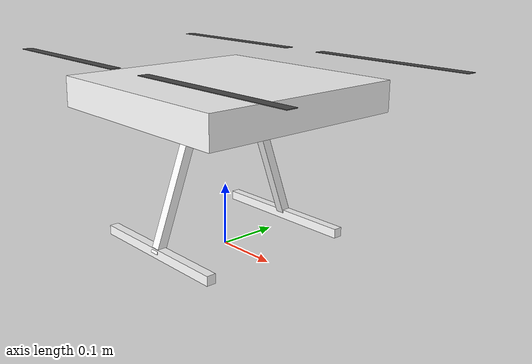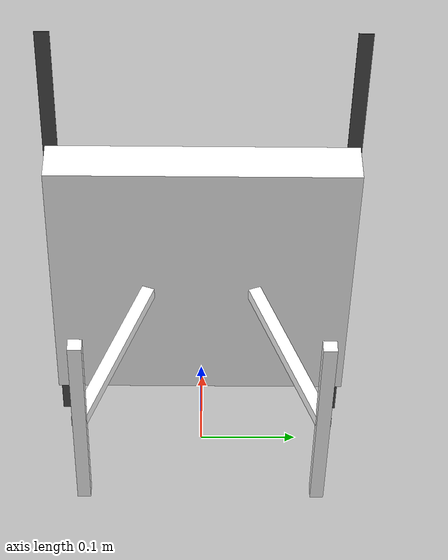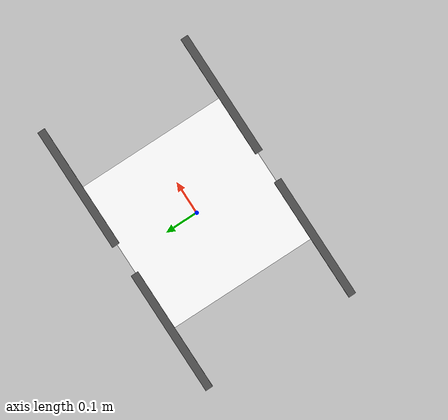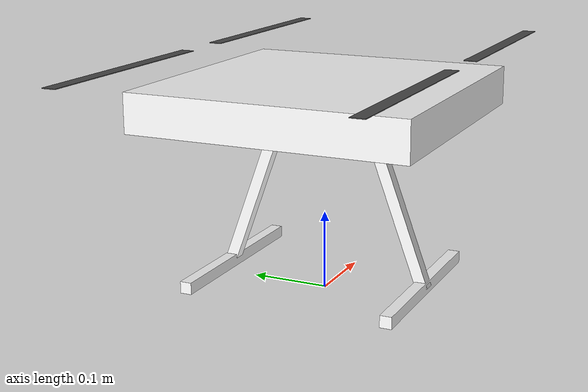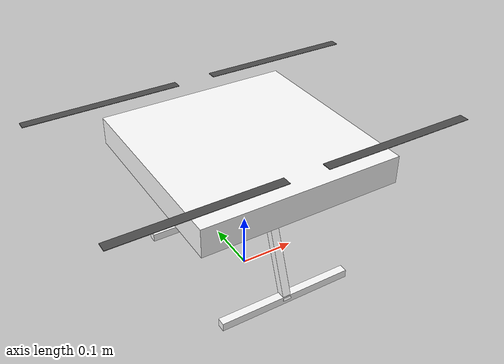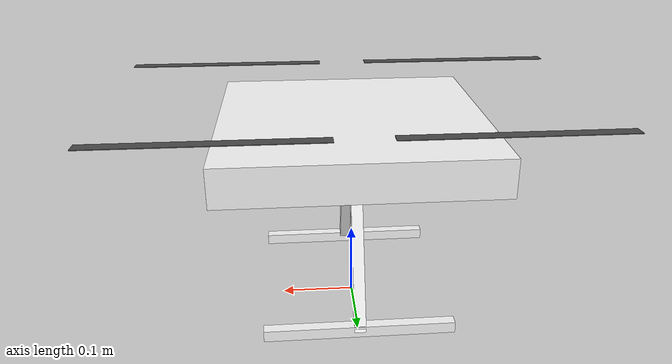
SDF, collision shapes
<?xml version="1.0" encoding="UTF-8"?>
<sdf version='1.9'>
  <model name='x500_depth'>
    <include merge='true'>
      <uri>x500</uri>
    </include>
    <include merge='true'>
      <uri>model://OakD-Lite</uri>
      <pose>0 0 0 0 0 0</pose>
    </include>
    <joint name="CameraJoint" type="fixed">
      <parent>base_link</parent>
      <child>camera_mount</child>
      <pose relative_to="base_link">0 0 0 0 0 0</pose>
    </joint>
  </model>
</sdf>

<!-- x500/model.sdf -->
<sdf version='1.9'>
  <model name='x500'>
    <include merge='true'>
      <uri>model://x500_base</uri>
    </include>
    <plugin filename="gz-sim-multicopter-motor-model-system" name="gz::sim::systems::MulticopterMotorModel">
      <jointName>rotor_0_joint</jointName>
      <linkName>rotor_0</linkName>
      <turningDirection>ccw</turningDirection>
      <timeConstantUp>0.0125</timeConstantUp>
      <timeConstantDown>0.025</timeConstantDown>
      <maxRotVelocity>1000.0</maxRotVelocity>
      <motorConstant>8.54858e-06</motorConstant>
      <momentConstant>0.016</momentConstant>
      <commandSubTopic>command/motor_speed</commandSubTopic>
      <motorNumber>0</motorNumber>
      <rotorDragCoefficient>8.06428e-05</rotorDragCoefficient>
      <rollingMomentCoefficient>1e-06</rollingMomentCoefficient>
      <rotorVelocitySlowdownSim>10</rotorVelocitySlowdownSim>
      <motorType>velocity</motorType>
      <motorSpeedPubTopic>out/motor_speed/0</motorSpeedPubTopic>
    </plugin>
    <plugin filename="gz-sim-multicopter-motor-model-system" name="gz::sim::systems::MulticopterMotorModel">
      <jointName>rotor_1_joint</jointName>
      <linkName>rotor_1</linkName>
      <turningDirection>ccw</turningDirection>
      <timeConstantUp>0.0125</timeConstantUp>
      <timeConstantDown>0.025</timeConstantDown>
      <maxRotVelocity>1000.0</maxRotVelocity>
      <motorConstant>8.54858e-06</motorConstant>
      <momentConstant>0.016</momentConstant>
      <commandSubTopic>command/motor_speed</commandSubTopic>
      <motorNumber>1</motorNumber>
      <rotorDragCoefficient>8.06428e-05</rotorDragCoefficient>
      <rollingMomentCoefficient>1e-06</rollingMomentCoefficient>
      <rotorVelocitySlowdownSim>10</rotorVelocitySlowdownSim>
      <motorType>velocity</motorType>
      <motorSpeedPubTopic>out/motor_speed/1</motorSpeedPubTopic>
    </plugin>
    <plugin filename="gz-sim-multicopter-motor-model-system" name="gz::sim::systems::MulticopterMotorModel">
      <jointName>rotor_2_joint</jointName>
      <linkName>rotor_2</linkName>
      <turningDirection>cw</turningDirection>
      <timeConstantUp>0.0125</timeConstantUp>
      <timeConstantDown>0.025</timeConstantDown>
      <maxRotVelocity>1000.0</maxRotVelocity>
      <motorConstant>8.54858e-06</motorConstant>
      <momentConstant>0.016</momentConstant>
      <commandSubTopic>command/motor_speed</commandSubTopic>
      <motorNumber>2</motorNumber>
      <rotorDragCoefficient>8.06428e-05</rotorDragCoefficient>
      <rollingMomentCoefficient>1e-06</rollingMomentCoefficient>
      <rotorVelocitySlowdownSim>10</rotorVelocitySlowdownSim>
      <motorType>velocity</motorType>
      <motorSpeedPubTopic>out/motor_speed/2</motorSpeedPubTopic>
    </plugin>
    <plugin filename="gz-sim-multicopter-motor-model-system" name="gz::sim::systems::MulticopterMotorModel">
      <jointName>rotor_3_joint</jointName>
      <linkName>rotor_3</linkName>
      <turningDirection>cw</turningDirection>
      <timeConstantUp>0.0125</timeConstantUp>
      <timeConstantDown>0.025</timeConstantDown>
      <maxRotVelocity>1000.0</maxRotVelocity>
      <motorConstant>8.54858e-06</motorConstant>
      <momentConstant>0.016</momentConstant>
      <commandSubTopic>command/motor_speed</commandSubTopic>
      <motorNumber>3</motorNumber>
      <rotorDragCoefficient>8.06428e-05</rotorDragCoefficient>
      <rollingMomentCoefficient>1e-06</rollingMomentCoefficient>
      <rotorVelocitySlowdownSim>10</rotorVelocitySlowdownSim>
      <motorType>velocity</motorType>
      <motorSpeedPubTopic>out/motor_speed/3</motorSpeedPubTopic>
    </plugin>
  </model>
</sdf>

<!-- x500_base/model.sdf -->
<sdf version='1.9'>
  <model name='x500_base'>
    <pose>0 0 .24 0 0 0</pose>
    <self_collide>false</self_collide>
    <static>false</static>
    <link name="base_link">
      <inertial>
        <mass>2.0</mass>
        <inertia>
          <ixx>0.02166666666666667</ixx>
          <ixy>0</ixy>
          <ixz>0</ixz>
          <iyy>0.02166666666666667</iyy>
          <iyz>0</iyz>
          <izz>0.04000000000000001</izz>
        </inertia>
      </inertial>
      <gravity>true</gravity>
      <velocity_decay/>
      <visual name="base_link_visual">
        <pose>0 0 .025 0 0 3.141592654</pose>
        <geometry>
          <mesh>
            <scale>1 1 1</scale>
            <uri>model://x500_base/meshes/NXP-HGD-CF.dae</uri>
          </mesh>
        </geometry>
      </visual>
      <visual name="5010_motor_base_0">
        <pose>0.174 0.174 .032 0 0 -.45</pose>
        <geometry>
          <mesh>
            <scale>1 1 1</scale>
            <uri>model://x500_base/meshes/5010Base.dae</uri>
          </mesh>
        </geometry>
      </visual>
      <visual name="5010_motor_base_1">
        <pose>-0.174 0.174 .032 0 0 -.45</pose>
        <geometry>
          <mesh>
            <scale>1 1 1</scale>
            <uri>model://x500_base/meshes/5010Base.dae</uri>
          </mesh>
        </geometry>
      </visual>
      <visual name="5010_motor_base_2">
        <pose>0.174 -0.174 .032 0 0 -.45</pose>
        <geometry>
          <mesh>
            <scale>1 1 1</scale>
            <uri>model://x500_base/meshes/5010Base.dae</uri>
          </mesh>
        </geometry>
      </visual>
      <visual name="5010_motor_base_3">
        <pose>-0.174 -0.174 .032 0 0 -.45</pose>
        <geometry>
          <mesh>
            <scale>1 1 1</scale>
            <uri>model://x500_base/meshes/5010Base.dae</uri>
          </mesh>
        </geometry>
      </visual>
      <visual name="NXP_FMUK66_FRONT">
        <pose>0.047 .001 .043 1 0 1.57</pose>
        <cast_shadows>false</cast_shadows>
        <geometry>
          <plane>
            <normal>0 0 1</normal>
            <size>.013 .007</size>
          </plane>
        </geometry>
        <material>
          <diffuse>1.0 1.0 1.0</diffuse>
          <specular>1.0 1.0 1.0</specular>
          <pbr>
            <metal>
              <albedo_map>model://x500_base/materials/textures/nxp.png</albedo_map>
            </metal>
          </pbr>
        </material>
      </visual>
      <visual name="NXP_FMUK66_TOP">
        <pose>-0.023 0 .0515 0 0 -1.57</pose>
        <cast_shadows>false</cast_shadows>
        <geometry>
          <plane>
            <normal>0 0 1</normal>
            <size>.013 .007</size>
          </plane>
        </geometry>
        <material>
          <diffuse>1.0 1.0 1.0</diffuse>
          <specular>1.0 1.0 1.0</specular>
          <pbr>
            <metal>
              <albedo_map>model://x500_base/materials/textures/nxp.png</albedo_map>
            </metal>
          </pbr>
        </material>
      </visual>
      <visual name="RDDRONE_FMUK66_TOP">
        <pose>-.03 0 .0515 0 0 -1.57</pose>
        <cast_shadows>false</cast_shadows>
        <geometry>
          <plane>
            <normal>0 0 1</normal>
            <size>.032 .0034</size>
          </plane>
        </geometry>
        <material>
          <diffuse>1.0 1.0 1.0</diffuse>
          <specular>1.0 1.0 1.0</specular>
          <pbr>
            <metal>
              <albedo_map>model://x500_base/materials/textures/rd.png</albedo_map>
            </metal>
          </pbr>
        </material>
      </visual>
      <collision name="base_link_collision_0">
        <pose>0 0 .007 0 0 0</pose>
        <geometry>
          <box>
            <size>0.35355339059327373 0.35355339059327373 0.05</size>
          </box>
        </geometry>
        <surface>
          <contact>
            <ode>
              <min_depth>0.001</min_depth>
              <max_vel>0</max_vel>
            </ode>
          </contact>
          <friction>
            <ode/>
          </friction>
        </surface>
      </collision>
      <collision name="base_link_collision_1">
        <pose>0 -0.098 -.123 -0.35 0 0</pose>
        <geometry>
          <box>
            <size>0.015 0.015 0.21</size>
          </box>
        </geometry>
        <surface>
          <contact>
            <ode>
              <min_depth>0.001</min_depth>
              <max_vel>0</max_vel>
            </ode>
          </contact>
          <friction>
            <ode/>
          </friction>
        </surface>
      </collision>
      <collision name="base_link_collision_2">
        <pose>0 0.098 -.123 0.35 0 0</pose>
        <geometry>
          <box>
            <size>0.015 0.015 0.21</size>
          </box>
        </geometry>
        <surface>
          <contact>
            <ode>
              <min_depth>0.001</min_depth>
              <max_vel>0</max_vel>
            </ode>
          </contact>
          <friction>
            <ode/>
          </friction>
        </surface>
      </collision>
      <collision name="base_link_collision_3">
        <pose>0 -0.132 -.2195 0 0 0</pose>
        <geometry>
          <box>
            <size>0.25 0.015 0.015</size>
          </box>
        </geometry>
        <surface>
          <contact>
            <ode>
              <min_depth>0.001</min_depth>
              <max_vel>0</max_vel>
            </ode>
          </contact>
          <friction>
            <ode/>
          </friction>
        </surface>
      </collision>
      <collision name="base_link_collision_4">
        <pose>0 0.132 -.2195 0 0 0</pose>
        <geometry>
          <box>
            <size>0.25 0.015 0.015</size>
          </box>
        </geometry>
        <surface>
          <contact>
            <ode>
              <min_depth>0.001</min_depth>
              <max_vel>0</max_vel>
            </ode>
          </contact>
          <friction>
            <ode/>
          </friction>
        </surface>
      </collision>
      <sensor name="air_pressure_sensor" type="air_pressure">
        <always_on>1</always_on>
        <update_rate>50</update_rate>
        <air_pressure>
          <!-- Noise modeled after BMP390 -->
          <pressure>
            <noise type="gaussian">
              <mean>0</mean>
              <stddev>3</stddev>
            </noise>
          </pressure>
        </air_pressure>
      </sensor>
      <sensor name="magnetometer_sensor" type="magnetometer">
        <always_on>1</always_on>
        <update_rate>100</update_rate>
        <magnetometer>
          <!-- TODO: update to fix units and coordinate system when we move past Harmonic -->
          <!-- See https://github.com/gazebosim/gz-sim/pull/2460 -->
          <!-- 3mgauss RMS: NOTE: noise is in tesla but sensor reports data in gauss -->
          <!-- Noise modeled after IIS2MDC -->
          <x>
            <noise type="gaussian">
              <stddev>0.0001</stddev>
            </noise>
          </x>
          <y>
            <noise type="gaussian">
              <stddev>0.0001</stddev>
            </noise>
          </y>
          <z>
            <noise type="gaussian">
              <stddev>0.0001</stddev>
            </noise>
          </z>
        </magnetometer>
      </sensor>
      <sensor name="imu_sensor" type="imu">
        <always_on>1</always_on>
        <update_rate>250</update_rate>
        <imu>
          <angular_velocity>
            <x>
              <noise type="gaussian">
                <mean>0.0</mean>
                <stddev>0.00008726646</stddev>
              </noise>
            </x>
            <y>
              <noise type="gaussian">
                <mean>0.0</mean>
                <stddev>0.00008726646</stddev>
              </noise>
            </y>
            <z>
              <noise type="gaussian">
                <mean>0.0</mean>
                <stddev>0.00008726646</stddev>
              </noise>
            </z>
          </angular_velocity>
          <linear_acceleration>
            <x>
              <noise type="gaussian">
                <mean>0.0</mean>
                <stddev>0.000637</stddev>
              </noise>
            </x>
            <y>
              <noise type="gaussian">
                <mean>0.0</mean>
                <stddev>0.000637</stddev>
              </noise>
            </y>
            <z>
              <noise type="gaussian">
                <mean>0.0</mean>
                <stddev>0.000686</stddev>
              </noise>
            </z>
          </linear_acceleration>
        </imu>
      </sensor>
      <sensor name="navsat_sensor" type="navsat">
        <always_on>1</always_on>
        <update_rate>30</update_rate>
      </sensor>
    </link>
    <link name="rotor_0">
      <gravity>true</gravity>
      <self_collide>false</self_collide>
      <velocity_decay/>
      <pose>0.174 -0.174 0.06 0 0 0</pose>
      <inertial>
          <mass>0.016076923076923075</mass>
          <inertia>
            <ixx>3.8464910483993325e-07</ixx>
            <iyy>2.6115851691700804e-05</iyy>
            <izz>2.649858234714004e-05</izz>
          </inertia>
        </inertial>
      <visual name="rotor_0_visual">
        <pose>-0.022 -0.14638461538461536 -0.016 0 0 0</pose>
        <geometry>
          <mesh>
            <scale>0.8461538461538461 0.8461538461538461 0.8461538461538461</scale>
            <uri>model://x500_base/meshes/1345_prop_ccw.stl</uri>
          </mesh>
        </geometry>
        <material>
          <script>
            <name>Gazebo/DarkGrey</name>
            <uri>file://media/materials/scripts/gazebo.material</uri>
          </script>
        </material>
      </visual>
      <visual name="rotor_0_visual_motor_bell">
        <pose>0 0 -.032 0 0 0</pose>
        <geometry>
          <mesh>
            <scale>1 1 1</scale>
            <uri>model://x500_base/meshes/5010Bell.dae</uri>
          </mesh>
        </geometry>
      </visual>
      <collision name="rotor_0_collision">
        <pose>0 0 0 0 0 0 </pose>
        <geometry>
          <box>
            <size>0.2792307692307692 0.016923076923076923 0.0008461538461538462</size>
          </box>
        </geometry>
        <surface>
          <contact>
            <ode>
              <min_depth>0.001</min_depth>
              <max_vel>0</max_vel>
            </ode>
          </contact>
          <friction>
            <ode/>
          </friction>
        </surface>
      </collision>
    </link>
    <joint name="rotor_0_joint" type="revolute">
      <parent>base_link</parent>
      <child>rotor_0</child>
      <axis>
        <xyz>0 0 1</xyz>
        <limit>
          <lower>-1e+16</lower>
          <upper>1e+16</upper>
        </limit>
        <dynamics>
          <spring_reference>0</spring_reference>
          <spring_stiffness>0</spring_stiffness>
        </dynamics>
      </axis>
    </joint>
    <link name="rotor_1">
      <gravity>true</gravity>
      <self_collide>false</self_collide>
      <velocity_decay/>
      <pose>-0.174 0.174 0.06 0 0 0</pose>
      <inertial>
          <mass>0.016076923076923075</mass>
          <inertia>
            <ixx>3.8464910483993325e-07</ixx>
            <iyy>2.6115851691700804e-05</iyy>
            <izz>2.649858234714004e-05</izz>
          </inertia>
        </inertial>
      <visual name="rotor_1_visual">
        <pose>-0.022 -0.14638461538461536 -0.016 0 0 0</pose>
        <geometry>
          <mesh>
            <scale>0.8461538461538461 0.8461538461538461 0.8461538461538461</scale>
            <uri>model://x500_base/meshes/1345_prop_ccw.stl</uri>
          </mesh>
        </geometry>
        <material>
          <script>
            <name>Gazebo/DarkGrey</name>
            <uri>file://media/materials/scripts/gazebo.material</uri>
          </script>
        </material>
      </visual>
      <visual name="rotor_1_visual_motor_top">
        <pose>0 0 -.032 0 0 0</pose>
        <geometry>
          <mesh>
            <scale>1 1 1</scale>
            <uri>model://x500_base/meshes/5010Bell.dae</uri>
          </mesh>
        </geometry>
      </visual>
      <collision name="rotor_1_collision">
        <pose>0 0 0 0 0 0 </pose>
        <geometry>
          <box>
            <size>0.2792307692307692 0.016923076923076923 0.0008461538461538462</size>
          </box>
        </geometry>
        <surface>
          <contact>
            <ode>
              <min_depth>0.001</min_depth>
              <max_vel>0</max_vel>
            </ode>
          </contact>
          <friction>
            <ode/>
          </friction>
        </surface>
      </collision>
    </link>
    <joint name="rotor_1_joint" type="revolute">
      <parent>base_link</parent>
      <child>rotor_1</child>
      <axis>
        <xyz>0 0 1</xyz>
        <limit>
          <lower>-1e+16</lower>
          <upper>1e+16</upper>
        </limit>
        <dynamics>
          <spring_reference>0</spring_reference>
          <spring_stiffness>0</spring_stiffness>
        </dynamics>
      </axis>
    </joint>
    <link name="rotor_2">
      <gravity>true</gravity>
      <self_collide>false</self_collide>
      <velocity_decay/>
      <pose>0.174 0.174 0.06 0 0 0</pose>
      <inertial>
          <mass>0.016076923076923075</mass>
          <inertia>
            <ixx>3.8464910483993325e-07</ixx>
            <iyy>2.6115851691700804e-05</iyy>
            <izz>2.649858234714004e-05</izz>
          </inertia>
        </inertial>
      <visual name="rotor_2_visual">
        <pose>-0.022 -0.14638461538461536 -0.016 0 0 0</pose>
        <geometry>
          <mesh>
            <scale>0.8461538461538461 0.8461538461538461 0.8461538461538461</scale>
            <uri>model://x500_base/meshes/1345_prop_cw.stl</uri>
          </mesh>
        </geometry>
        <material>
          <script>
            <name>Gazebo/DarkGrey</name>
            <uri>file://media/materials/scripts/gazebo.material</uri>
          </script>
        </material>
      </visual>
      <visual name="rotor_2_visual_motor_top">
        <pose>0 0 -.032 0 0 0</pose>
        <geometry>
          <mesh>
            <scale>1 1 1</scale>
            <uri>model://x500_base/meshes/5010Bell.dae</uri>
          </mesh>
        </geometry>
      </visual>
      <collision name="rotor_2_collision">
        <pose>0 0 0 0 0 0 </pose>
        <geometry>
          <box>
            <size>0.2792307692307692 0.016923076923076923 0.0008461538461538462</size>
          </box>
        </geometry>
        <surface>
          <contact>
            <ode>
              <min_depth>0.001</min_depth>
              <max_vel>0</max_vel>
            </ode>
          </contact>
          <friction>
            <ode/>
          </friction>
        </surface>
      </collision>
    </link>
    <joint name="rotor_2_joint" type="revolute">
      <parent>base_link</parent>
      <child>rotor_2</child>
      <axis>
        <xyz>0 0 1</xyz>
        <limit>
          <lower>-1e+16</lower>
          <upper>1e+16</upper>
        </limit>
        <dynamics>
          <spring_reference>0</spring_reference>
          <spring_stiffness>0</spring_stiffness>
        </dynamics>
      </axis>
    </joint>
    <link name="rotor_3">
      <gravity>true</gravity>
      <self_collide>false</self_collide>
      <velocity_decay/>
      <pose>-0.174 -0.174 0.06 0 0 0</pose>
      <inertial>
          <mass>0.016076923076923075</mass>
          <inertia>
            <ixx>3.8464910483993325e-07</ixx>
            <iyy>2.6115851691700804e-05</iyy>
            <izz>2.649858234714004e-05</izz>
          </inertia>
        </inertial>
      <visual name="rotor_3_visual">
        <pose>-0.022 -0.14638461538461536 -0.016 0 0 0</pose>
        <geometry>
          <mesh>
            <scale>0.8461538461538461 0.8461538461538461 0.8461538461538461</scale>
            <uri>model://x500_base/meshes/1345_prop_cw.stl</uri>
          </mesh>
        </geometry>
        <material>
          <script>
            <name>Gazebo/DarkGrey</name>
            <uri>file://media/materials/scripts/gazebo.material</uri>
          </script>
        </material>
      </visual>
      <visual name="rotor_3_visual_motor_top">
        <pose>0 0 -.032 0 0 0</pose>
        <geometry>
          <mesh>
            <scale>1 1 1</scale>
            <uri>model://x500_base/meshes/5010Bell.dae</uri>
          </mesh>
        </geometry>
      </visual>
      <collision name="rotor_3_collision">
        <pose>0 0 0 0 0 0 </pose>
        <geometry>
          <box>
            <size>0.2792307692307692 0.016923076923076923 0.0008461538461538462</size>
          </box>
        </geometry>
        <surface>
          <contact>
            <ode>
              <min_depth>0.001</min_depth>
              <max_vel>0</max_vel>
            </ode>
          </contact>
          <friction>
            <ode/>
          </friction>
        </surface>
      </collision>
    </link>
    <joint name="rotor_3_joint" type="revolute">
      <parent>base_link</parent>
      <child>rotor_3</child>
      <axis>
        <xyz>0 0 1</xyz>
        <limit>
          <lower>-1e+16</lower>
          <upper>1e+16</upper>
        </limit>
        <dynamics>
          <spring_reference>0</spring_reference>
          <spring_stiffness>0</spring_stiffness>
        </dynamics>
      </axis>
    </joint>
  </model>
</sdf>

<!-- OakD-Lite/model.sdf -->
<sdf version="1.9">
  <model name="OakD-Lite">
    <pose>0 0 0 0 0 0</pose>
    <self_collide>false</self_collide>
    <static>false</static>

    <!-- ROOT VIRTUALE: massa/inerzia quasi nulle -->
    <link name="camera_mount">
      <inertial>
        <mass>0.0001</mass>
        <inertia>
          <ixx>1e-6</ixx><ixy>0</ixy><ixz>0</ixz>
          <iyy>1e-6</iyy><iyz>0</iyz>
          <izz>1e-6</izz>
        </inertia>
      </inertial>
    </link>

    <!-- CAMERA FRONT: inerzia "reale" + mesh/collision se vuoi -->
    <link name="camera_link_front">
      <inertial>
        <pose>0.12358 0 0.256 0 0 0</pose>
        <mass>0.061</mass>
        <inertia>
          <ixx>0.0000460804</ixx>
          <ixy>0</ixy>
          <ixz>0</ixz>
          <iyy>0.0000055421</iyy>
          <iyz>0</iyz>
          <izz>0.0000436519</izz>
        </inertia>
      </inertial>

      <visual name="oakd_front_visual">
        <pose>0.12 0.03 0.242 0 0 0</pose>
        <geometry>
          <mesh>
            <scale>1 1 1</scale>
            <uri>model://OakD-Lite/meshes/OakDLite.dae</uri>
          </mesh>
        </geometry>
      </visual>

      <collision name="oakd_front_collision">
        <pose>0.12358 0 0.256 0 0 0</pose>
        <geometry>
          <box><size>0.0175 0.091 0.028</size></box>
        </geometry>
      </collision>

      <sensor name="IMX214_front" type="camera">
        <pose>0.12358 0 0.256 0 0 0</pose>
        <camera>
          <horizontal_fov>1.204</horizontal_fov>
          <image><width>1920</width><height>1080</height></image>
          <clip><near>0.1</near><far>100</far></clip>
        </camera>
        <always_on>1</always_on>
        <update_rate>30</update_rate>
        <visualize>true</visualize>
      </sensor>

      <sensor name="StereoOV7251_front" type="depth_camera">
        <pose>0.12358 0 0.256 0 0 0</pose>
        <camera>
          <horizontal_fov>1.274</horizontal_fov>
          <image>
            <width>640</width><height>480</height><format>R_FLOAT32</format>
          </image>
          <clip><near>0.2</near><far>19.1</far></clip>
        </camera>
        <always_on>1</always_on>
        <update_rate>30</update_rate>
        <visualize>true</visualize>
        <topic>depth_camera_front</topic>
      </sensor>
    </link>

    <!-- CAMERA RIGHT: inerzia "reale" + mesh/collision se vuoi -->
    <link name="camera_link_right">
      <inertial>
        <pose>0 -0.12358 0.256 0 0 -1.570796</pose>
        <mass>0.061</mass>
        <inertia>
          <ixx>0.0000460804</ixx>
          <ixy>0</ixy>
          <ixz>0</ixz>
          <iyy>0.0000055421</iyy>
          <iyz>0</iyz>
          <izz>0.0000436519</izz>
        </inertia>
      </inertial>

      <visual name="oakd_right_visual">
        <pose>0.03 -0.12 0.242 0 0 -1.570796</pose>
        <geometry>
          <mesh>
            <scale>1 1 1</scale>
            <uri>model://OakD-Lite/meshes/OakDLite.dae</uri>
          </mesh>
        </geometry>
      </visual>

      <collision name="oakd_right_collision">
        <pose>0 -0.12358 0.256 0 0 -1.570796</pose>
        <geometry>
          <box><size>0.0175 0.091 0.028</size></box>
        </geometry>
      </collision>

      <sensor name="IMX214_right" type="camera">
        <pose>0 -0.12358 0.256 0 0 -1.570796</pose>
        <camera>
          <horizontal_fov>1.204</horizontal_fov>
          <image><width>1920</width><height>1080</height></image>
          <clip><near>0.1</near><far>100</far></clip>
        </camera>
        <always_on>1</always_on>
        <update_rate>30</update_rate>
        <visualize>true</visualize>
      </sensor>

      <sensor name="StereoOV7251_right" type="depth_camera">
        <pose>0 -0.12358 0.256 0 0 -1.570796</pose>
        <camera>
          <horizontal_fov>1.274</horizontal_fov>
          <image>
            <width>640</width><height>480</height><format>R_FLOAT32</format>
          </image>
          <clip><near>0.2</near><far>19.1</far></clip>
        </camera>
        <always_on>1</always_on>
        <update_rate>30</update_rate>
        <visualize>true</visualize>
        <topic>depth_camera_right</topic>
      </sensor>
    </link>

    <!-- CAMERA LEFT: inerzia "reale" + mesh/collision se vuoi -->
    <link name="camera_link_left">
      <inertial>
        <pose>0 0.12358 0.256 0 0 1.570796</pose>
        <mass>0.061</mass>
        <inertia>
          <ixx>0.0000460804</ixx>
          <ixy>0</ixy>
          <ixz>0</ixz>
          <iyy>0.0000055421</iyy>
          <iyz>0</iyz>
          <izz>0.0000436519</izz>
        </inertia>
      </inertial>

      <visual name="oakd_left_visual">
        <pose>-0.03 0.12 0.242 0 0 1.570796</pose>
        <geometry>
          <mesh>
            <scale>1 1 1</scale>
            <uri>model://OakD-Lite/meshes/OakDLite.dae</uri>
          </mesh>
        </geometry>
      </visual>

      <collision name="oakd_left_collision">
        <pose>0 0.12358 0.256 0 0 1.570796</pose>
        <geometry>
          <box><size>0.0175 0.091 0.028</size></box>
        </geometry>
      </collision>

      <sensor name="IMX214_left" type="camera">
        <pose>0 0.12358 0.256 0 0 1.570796</pose>
        <camera>
          <horizontal_fov>1.204</horizontal_fov>
          <image><width>1920</width><height>1080</height></image>
          <clip><near>0.1</near><far>100</far></clip>
        </camera>
        <always_on>1</always_on>
        <update_rate>30</update_rate>
        <visualize>true</visualize>
      </sensor>

      <sensor name="StereoOV7251_left" type="depth_camera">
        <pose>0 0.12358 0.256 0 0 1.570796</pose>
        <camera>
          <horizontal_fov>1.274</horizontal_fov>
          <image>
            <width>640</width><height>480</height><format>R_FLOAT32</format>
          </image>
          <clip><near>0.2</near><far>19.1</far></clip>
        </camera>
        <always_on>1</always_on>
        <update_rate>30</update_rate>
        <visualize>true</visualize>
        <topic>depth_camera_left</topic>
      </sensor>
    </link>

    <!-- CAMERA REAR: inerzia "reale" + mesh/collision se vuoi -->
    <link name="camera_link_rear">
      <inertial>
        <pose>-0.12358 0 0.256 0 0 3.14159</pose>
        <mass>0.061</mass>
        <inertia>
          <ixx>0.0000460804</ixx>
          <ixy>0</ixy>
          <ixz>0</ixz>
          <iyy>0.0000055421</iyy>
          <iyz>0</iyz>
          <izz>0.0000436519</izz>
        </inertia>
      </inertial>

      <visual name="oakd_rear_visual">
        <pose>-0.12 -0.03 0.242 0 0 3.14159</pose>
        <geometry>
          <mesh>
            <scale>1 1 1</scale>
            <uri>model://OakD-Lite/meshes/OakDLite.dae</uri>
          </mesh>
        </geometry>
      </visual>

      <collision name="oakd_rear_collision">
        <pose>-0.12358 0 0.256 0 0 3.14159</pose>
        <geometry>
          <box><size>0.0175 0.091 0.028</size></box>
        </geometry>
      </collision>

      <sensor name="IMX214_rear" type="camera">
        <pose>-0.12358 0 0.256 0 0 3.14159</pose>
        <camera>
          <horizontal_fov>1.204</horizontal_fov>
          <image><width>1920</width><height>1080</height></image>
          <clip><near>0.1</near><far>100</far></clip>
        </camera>
        <always_on>1</always_on>
        <update_rate>30</update_rate>
        <visualize>true</visualize>
      </sensor>

      <sensor name="StereoOV7251_rear" type="depth_camera">
        <pose>-0.12358 0 0.256 0 0 3.14159</pose>
        <camera>
          <horizontal_fov>1.274</horizontal_fov>
          <image>
            <width>640</width><height>480</height><format>R_FLOAT32</format>
          </image>
          <clip><near>0.2</near><far>19.1</far></clip>
        </camera>
        <always_on>1</always_on>
        <update_rate>30</update_rate>
        <visualize>true</visualize>
        <topic>depth_camera_rear</topic>
      </sensor>
    </link>

    <!-- JOINT: mount -> front -->
    <joint name="mount_to_front" type="fixed">
      <parent>camera_mount</parent>
      <child>camera_link_front</child>
      <!-- posa del front rispetto al mount (se mount è al “centro”, qui metti offset) -->
      <pose relative_to="camera_mount">.12 .03 0.242 0 0 0</pose>
    </joint>

    <!-- JOINT: mount -> right -->
    <joint name="mount_to_right" type="fixed">
      <parent>camera_mount</parent>
      <child>camera_link_right</child>
      <!-- yaw -90° per guardare a destra -->
      <pose relative_to="camera_mount">0.03 -0.12 0.242 0 0 -1.570796</pose>
    </joint>

    <!-- JOINT: mount -> left -->
    <joint name="mount_to_left" type="fixed">
      <parent>camera_mount</parent>
      <child>camera_link_left</child>
      <pose relative_to="camera_mount">-0.03 0.12 0.242 0 0 1.570796</pose>
    </joint>

    <!-- JOINT: mount -> rear -->
    <joint name="mount_to_rear" type="fixed">
      <parent>camera_mount</parent>
      <child>camera_link_rear</child>
      <pose relative_to="camera_mount">-0.12 -0.03 0.242 0 0 3.14159</pose>
    </joint>

  </model>
</sdf>
